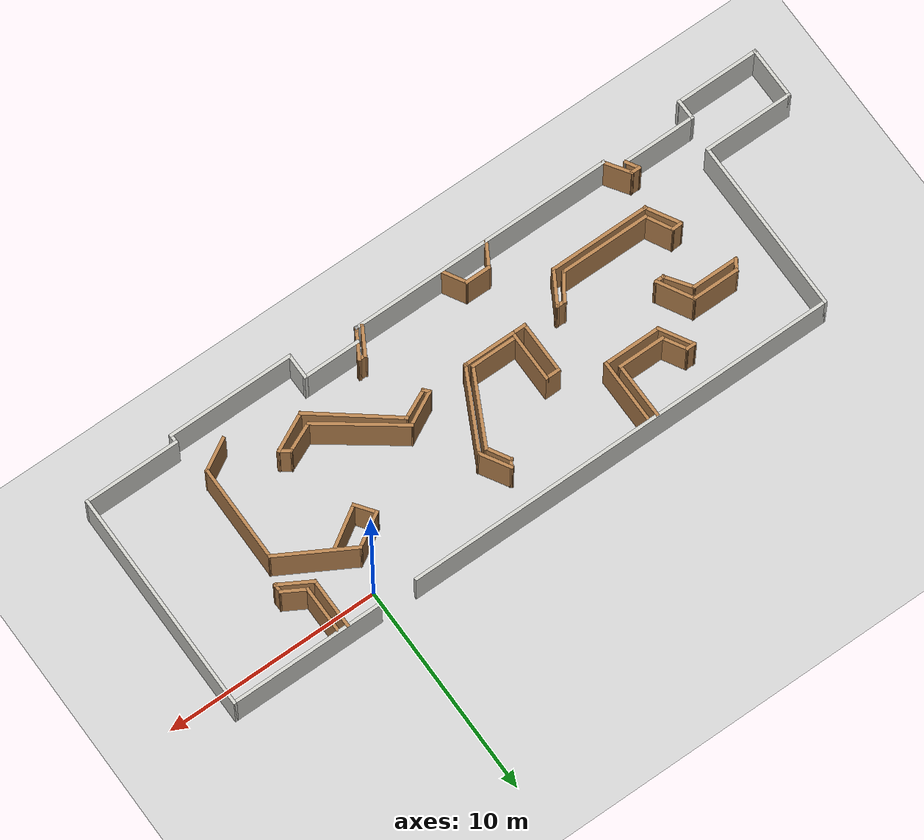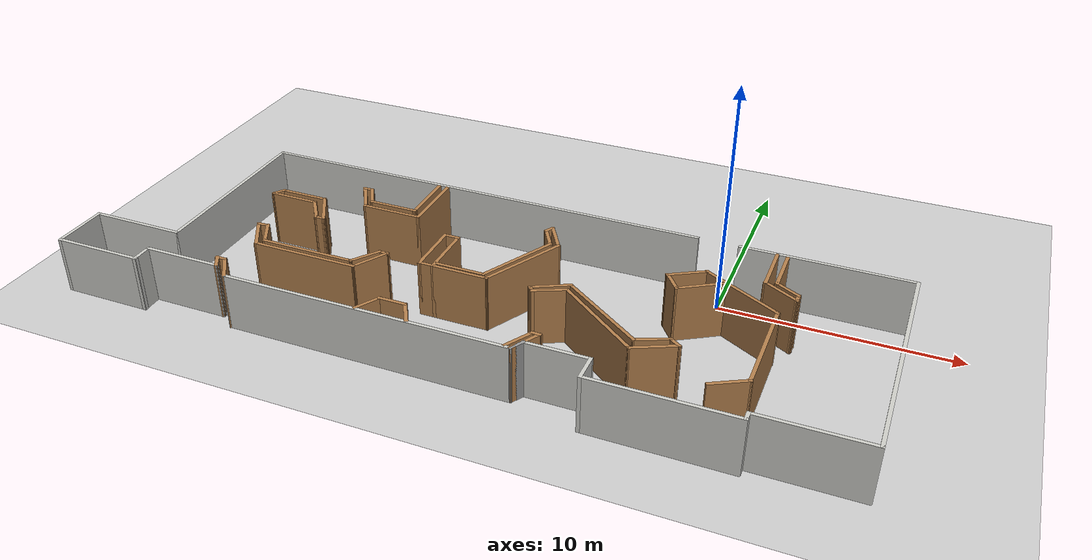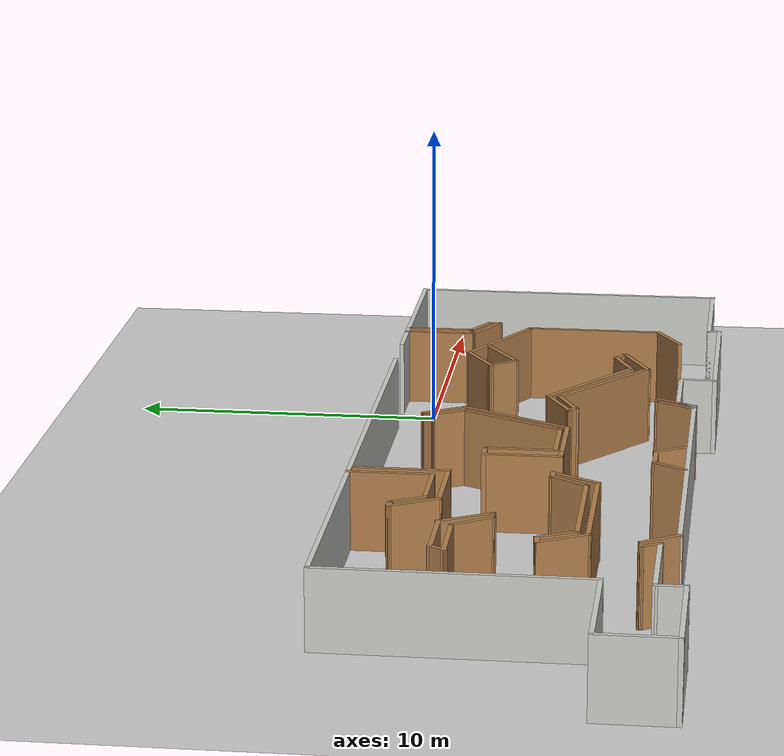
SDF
<sdf version="1.7">
 <world name="default">
  <light name="sun" type="directional">
   <pose>0 0 10 0 -0 0</pose>
   <diffuse>0.8 0.8 0.8 1</diffuse>
   <specular>0.2 0.2 0.2 1</specular>
   <attenuation>
    <range>1000</range>
    <constant>0.9</constant>
    <linear>0.01</linear>
    <quadratic>0.001</quadratic>
   </attenuation>
   <direction>-0.5 0.1 -0.9</direction>
   <spot><inner_angle>0</inner_angle><outer_angle>0</outer_angle><falloff>0</falloff></spot>
  </light>
  <model name="ground_plane">
   <static>1</static>
   <link name="link">
    <collision name="collision">
     <geometry><plane><normal>0 0 1</normal><size>100 100</size></plane></geometry>
     <surface>
      <contact><collide_bitmask>65535</collide_bitmask></contact>
      <friction><ode><mu>100</mu><mu2>50</mu2></ode></friction>
     </surface>
    </collision>
    <visual name="visual">
     <cast_shadows>0</cast_shadows>
     <geometry><plane><normal>0 0 1</normal><size>100 100</size></plane></geometry>
     <material>
      <script><uri>file://media/materials/scripts/gazebo.material</uri><name>Gazebo/Grey</name></script>
     </material>
    </visual>
   </link>
  </model>
  <gravity>0 0 -9.8</gravity>
  <magnetic_field>6e-06 2.3e-05 -4.2e-05</magnetic_field>
  <atmosphere type="adiabatic"/>
  <physics type="ode">
   <max_step_size>0.001</max_step_size>
   <real_time_factor>1</real_time_factor>
   <real_time_update_rate>1000</real_time_update_rate>
  </physics>
  <scene><ambient>0.4 0.4 0.4 1</ambient><background>0.7 0.7 0.7 1</background><shadows>1</shadows></scene>
  <spherical_coordinates>
   <surface_model>EARTH_WGS84</surface_model>
   <latitude_deg>0</latitude_deg>
   <longitude_deg>0</longitude_deg>
   <elevation>0</elevation>
   <heading_deg>0</heading_deg>
  </spherical_coordinates>
  <model name="Galata_museo">
   <pose>-9.11237 -4.2189 0 0 -0 0</pose>
   <link name="Wall_0">
    <collision name="Wall_0_Collision">
     <geometry><box><size>4 0.15 2.5</size></box></geometry>
     <pose>0 0 1.25 0 -0 0</pose>
    </collision>
    <visual name="Wall_0_Visual">
     <pose>0 0 1.25 0 -0 0</pose>
     <geometry><box><size>4 0.15 2.5</size></box></geometry>
     <material>
      <script><uri>file://media/materials/scripts/gazebo.material</uri><name>Gazebo/CeilingTiled</name></script>
      <ambient>1 1 1 1</ambient>
     </material>
     <meta><layer>0</layer></meta>
    </visual>
    <pose>-14.762 -5.10388 0 0 -0 3.14159</pose>
   </link>
   <link name="Wall_1">
    <collision name="Wall_1_Collision">
     <geometry><box><size>2.5 0.15 2.5</size></box></geometry>
     <pose>0 0 1.25 0 -0 0</pose>
    </collision>
    <visual name="Wall_1_Visual">
     <pose>0 0 1.25 0 -0 0</pose>
     <geometry><box><size>2.5 0.15 2.5</size></box></geometry>
     <material>
      <script><uri>file://media/materials/scripts/gazebo.material</uri><name>Gazebo/CeilingTiled</name></script>
      <ambient>1 1 1 1</ambient>
     </material>
     <meta><layer>0</layer></meta>
    </visual>
    <pose>-16.687 -3.92888 0 0 -0 1.5708</pose>
   </link>
   <link name="Wall_10">
    <collision name="Wall_10_Collision">
     <geometry><box><size>0.5 0.15 2.5</size></box></geometry>
     <pose>0 0 1.25 0 -0 0</pose>
    </collision>
    <visual name="Wall_10_Visual">
     <pose>0 0 1.25 0 -0 0</pose>
     <geometry><box><size>0.5 0.15 2.5</size></box></geometry>
     <material>
      <script><uri>file://media/materials/scripts/gazebo.material</uri><name>Gazebo/CeilingTiled</name></script>
      <ambient>1 1 1 1</ambient>
     </material>
     <meta><layer>0</layer></meta>
    </visual>
    <pose>12.337 -5.175 0 0 -0 -1.5708</pose>
   </link>
   <link name="Wall_11">
    <collision name="Wall_11_Collision">
     <geometry><box><size>6 0.15 2.5</size></box></geometry>
     <pose>0 0 1.25 0 -0 0</pose>
    </collision>
    <visual name="Wall_11_Visual">
     <pose>0 0 1.25 0 -0 0</pose>
     <geometry><box><size>6 0.15 2.5</size></box></geometry>
     <material>
      <script><uri>file://media/materials/scripts/gazebo.material</uri><name>Gazebo/CeilingTiled</name></script>
      <ambient>1 1 1 1</ambient>
     </material>
     <meta><layer>0</layer></meta>
    </visual>
    <pose>9.41198 -5.35 0 0 -0 3.14159</pose>
   </link>
   <link name="Wall_12">
    <collision name="Wall_12_Collision">
     <geometry><box><size>1.25 0.15 2.5</size></box></geometry>
     <pose>0 0 1.25 0 -0 0</pose>
    </collision>
    <visual name="Wall_12_Visual">
     <pose>0 0 1.25 0 -0 0</pose>
     <geometry><box><size>1.25 0.15 2.5</size></box></geometry>
     <material>
      <script><uri>file://media/materials/scripts/gazebo.material</uri><name>Gazebo/CeilingTiled</name></script>
      <ambient>1 1 1 1</ambient>
     </material>
     <meta><layer>0</layer></meta>
    </visual>
    <pose>6.48698 -4.8 0 0 -0 1.5708</pose>
   </link>
   <link name="Wall_13">
    <collision name="Wall_13_Collision">
     <geometry><box><size>2.75 0.15 2.5</size></box></geometry>
     <pose>0 0 1.25 0 -0 0</pose>
    </collision>
    <visual name="Wall_13_Visual">
     <pose>0 0 1.25 0 -0 0</pose>
     <geometry><box><size>2.75 0.15 2.5</size></box></geometry>
     <material>
      <script><uri>file://media/materials/scripts/gazebo.material</uri><name>Gazebo/CeilingTiled</name></script>
      <ambient>1 1 1 1</ambient>
     </material>
     <meta><layer>0</layer></meta>
    </visual>
    <pose>5.18698 -4.25 0 0 -0 3.14159</pose>
   </link>
   <link name="Wall_14">
    <collision name="Wall_14_Collision">
     <geometry><box><size>0.75 0.15 2.5</size></box></geometry>
     <pose>0 0 1.25 0 -0 0</pose>
    </collision>
    <visual name="Wall_14_Visual">
     <pose>0 0 1.25 0 -0 0</pose>
     <geometry><box><size>0.75 0.15 2.5</size></box></geometry>
     <material>
      <script><uri>file://media/materials/scripts/gazebo.material</uri><name>Gazebo/Grey</name></script>
      <ambient>1 1 1 1</ambient>
     </material>
     <meta><layer>0</layer></meta>
    </visual>
    <pose>3.73698 -4.50981 0 0 -0 -2.0944</pose>
   </link>
   <link name="Wall_15">
    <collision name="Wall_15_Collision">
     <geometry><box><size>12.5 0.15 2.5</size></box></geometry>
     <pose>0 0 1.25 0 -0 0</pose>
    </collision>
    <visual name="Wall_15_Visual">
     <pose>0 0 1.25 0 -0 0</pose>
     <geometry><box><size>12.5 0.15 2.5</size></box></geometry>
     <material>
      <script><uri>file://media/materials/scripts/gazebo.material</uri><name>Gazebo/CeilingTiled</name></script>
      <ambient>1 1 1 1</ambient>
     </material>
     <meta><layer>0</layer></meta>
    </visual>
    <pose>-2.58802 -4.76961 0 0 -0 3.14159</pose>
   </link>
   <link name="Wall_16">
    <collision name="Wall_16_Collision">
     <geometry><box><size>1.41733 0.15 2.5</size></box></geometry>
     <pose>0 0 1.25 0 -0 0</pose>
    </collision>
    <visual name="Wall_16_Visual">
     <pose>0 0 1.25 0 -0 0</pose>
     <geometry><box><size>1.41733 0.15 2.5</size></box></geometry>
     <material>
      <script><uri>file://media/materials/scripts/gazebo.material</uri><name>Gazebo/Wood</name></script>
      <ambient>1 1 1 1</ambient>
     </material>
     <meta><layer>0</layer></meta>
    </visual>
    <pose>-9.11692 -4.24399 0 0 -0 2.16337</pose>
   </link>
   <link name="Wall_17">
    <collision name="Wall_17_Collision">
     <geometry><box><size>0.5 0.15 2.5</size></box></geometry>
     <pose>0 0 1.25 0 -0 0</pose>
    </collision>
    <visual name="Wall_17_Visual">
     <pose>0 0 1.25 0 -0 0</pose>
     <geometry><box><size>0.5 0.15 2.5</size></box></geometry>
     <material>
      <script><uri>file://media/materials/scripts/gazebo.material</uri><name>Gazebo/Wood</name></script>
      <ambient>1 1 1 1</ambient>
     </material>
     <meta><layer>0</layer></meta>
    </visual>
    <pose>-9.64582 -3.72822 0 0 -0 3.14159</pose>
   </link>
   <link name="Wall_2">
    <collision name="Wall_2_Collision">
     <geometry><box><size>4.25 0.15 2.5</size></box></geometry>
     <pose>0 0 1.25 0 -0 0</pose>
    </collision>
    <visual name="Wall_2_Visual">
     <pose>0 0 1.25 0 -0 0</pose>
     <geometry><box><size>4.25 0.15 2.5</size></box></geometry>
     <material>
      <script><uri>file://media/materials/scripts/gazebo.material</uri><name>Gazebo/CeilingTiled</name></script>
      <ambient>1 1 1 1</ambient>
     </material>
     <meta><layer>0</layer></meta>
    </visual>
    <pose>-14.637 -2.75388 0 0 -0 0</pose>
   </link>
   <link name="Wall_20">
    <collision name="Wall_20_Collision">
     <geometry><box><size>0.75 0.15 2.5</size></box></geometry>
     <pose>0 0 1.25 0 -0 0</pose>
    </collision>
    <visual name="Wall_20_Visual">
     <pose>0 0 1.25 0 -0 0</pose>
     <geometry><box><size>0.75 0.15 2.5</size></box></geometry>
     <material>
      <script><uri>file://media/materials/scripts/gazebo.material</uri><name>Gazebo/Wood</name></script>
      <ambient>1 1 1 1</ambient>
     </material>
     <meta><layer>0</layer></meta>
    </visual>
    <pose>-9.67082 -3.98803 0 0 -0 -1.0472</pose>
   </link>
   <link name="Wall_21">
    <collision name="Wall_21_Collision">
     <geometry><box><size>3.5 0.15 2.5</size></box></geometry>
     <pose>0 0 1.25 0 -0 0</pose>
    </collision>
    <visual name="Wall_21_Visual">
     <pose>0 0 1.25 0 -0 0</pose>
     <geometry><box><size>3.5 0.15 2.5</size></box></geometry>
     <material>
      <script><uri>file://media/materials/scripts/gazebo.material</uri><name>Gazebo/CeilingTiled</name></script>
      <ambient>1 1 1 1</ambient>
     </material>
     <meta><layer>0</layer></meta>
    </visual>
    <pose>-11.1958 -4.24784 0 0 -0 3.14159</pose>
   </link>
   <link name="Wall_22">
    <collision name="Wall_22_Collision">
     <geometry><box><size>1.01715 0.15 2.5</size></box></geometry>
     <pose>0 0 1.25 0 -0 0</pose>
    </collision>
    <visual name="Wall_22_Visual">
     <pose>0 0 1.25 0 -0 0</pose>
     <geometry><box><size>1.01715 0.15 2.5</size></box></geometry>
     <material>
      <script><uri>file://media/materials/scripts/gazebo.material</uri><name>Gazebo/CeilingTiled</name></script>
      <ambient>1 1 1 1</ambient>
     </material>
     <meta><layer>0</layer></meta>
    </visual>
    <pose>-12.8662 -4.68127 0 0 -0 -1.56017</pose>
   </link>
   <link name="Wall_24">
    <collision name="Wall_24_Collision">
     <geometry><box><size>1.75 0.15 2.5</size></box></geometry>
     <pose>0 0 1.25 0 -0 0</pose>
    </collision>
    <visual name="Wall_24_Visual">
     <pose>0 0 1.25 0 -0 0</pose>
     <geometry><box><size>1.75 0.15 2.5</size></box></geometry>
     <material>
      <script><uri>file://media/materials/scripts/gazebo.material</uri><name>Gazebo/Wood</name></script>
      <ambient>1 1 1 1</ambient>
     </material>
     <meta><layer>0</layer></meta>
    </visual>
    <pose>-9.40745 -1.48576 0 0 -0 -1.0472</pose>
   </link>
   <link name="Wall_25">
    <collision name="Wall_25_Collision">
     <geometry><box><size>4.75 0.15 2.5</size></box></geometry>
     <pose>0 0 1.25 0 -0 0</pose>
    </collision>
    <visual name="Wall_25_Visual">
     <pose>0 0 1.25 0 -0 0</pose>
     <geometry><box><size>4.75 0.15 2.5</size></box></geometry>
     <material>
      <script><uri>file://media/materials/scripts/gazebo.material</uri><name>Gazebo/Wood</name></script>
      <ambient>1 1 1 1</ambient>
     </material>
     <meta><layer>0</layer></meta>
    </visual>
    <pose>-6.70745 -2.17858 0 0 -0 0</pose>
   </link>
   <link name="Wall_26">
    <collision name="Wall_26_Collision">
     <geometry><box><size>1.75 0.15 2.5</size></box></geometry>
     <pose>0 0 1.25 0 -0 0</pose>
    </collision>
    <visual name="Wall_26_Visual">
     <pose>0 0 1.25 0 -0 0</pose>
     <geometry><box><size>1.75 0.15 2.5</size></box></geometry>
     <material>
      <script><uri>file://media/materials/scripts/gazebo.material</uri><name>Gazebo/Wood</name></script>
      <ambient>1 1 1 1</ambient>
     </material>
     <meta><layer>0</layer></meta>
    </visual>
    <pose>-4.00745 -1.48576 0 0 -0 1.0472</pose>
   </link>
   <link name="Wall_27">
    <collision name="Wall_27_Collision">
     <geometry><box><size>0.5 0.15 2.5</size></box></geometry>
     <pose>0 0 1.25 0 -0 0</pose>
    </collision>
    <visual name="Wall_27_Visual">
     <pose>0 0 1.25 0 -0 0</pose>
     <geometry><box><size>0.5 0.15 2.5</size></box></geometry>
     <material>
      <script><uri>file://media/materials/scripts/gazebo.material</uri><name>Gazebo/Wood</name></script>
      <ambient>1 1 1 1</ambient>
     </material>
     <meta><layer>0</layer></meta>
    </visual>
    <pose>-3.78245 -0.792938 0 0 -0 3.14159</pose>
   </link>
   <link name="Wall_28">
    <collision name="Wall_28_Collision">
     <geometry><box><size>1.44475 0.15 2.5</size></box></geometry>
     <pose>0 0 1.25 0 -0 0</pose>
    </collision>
    <visual name="Wall_28_Visual">
     <pose>0 0 1.25 0 -0 0</pose>
     <geometry><box><size>1.44475 0.15 2.5</size></box></geometry>
     <material>
      <script><uri>file://media/materials/scripts/gazebo.material</uri><name>Gazebo/Wood</name></script>
      <ambient>1 1 1 1</ambient>
     </material>
     <meta><layer>0</layer></meta>
    </visual>
    <pose>-4.32672 -1.32467 0 0 -0 -2.17779</pose>
   </link>
   <link name="Wall_29">
    <collision name="Wall_29_Collision">
     <geometry><box><size>4.25 0.15 2.5</size></box></geometry>
     <pose>0 0 1.25 0 -0 0</pose>
    </collision>
    <visual name="Wall_29_Visual">
     <pose>0 0 1.25 0 -0 0</pose>
     <geometry><box><size>4.25 0.15 2.5</size></box></geometry>
     <material>
      <script><uri>file://media/materials/scripts/gazebo.material</uri><name>Gazebo/Wood</name></script>
      <ambient>1 1 1 1</ambient>
     </material>
     <meta><layer>0</layer></meta>
    </visual>
    <pose>-6.74598 -1.8564 0 0 -0 3.14159</pose>
   </link>
   <link name="Wall_3">
    <collision name="Wall_3_Collision">
     <geometry><box><size>8.25 0.15 2.5</size></box></geometry>
     <pose>0 0 1.25 0 -0 0</pose>
    </collision>
    <visual name="Wall_3_Visual">
     <pose>0 0 1.25 0 -0 0</pose>
     <geometry><box><size>8.25 0.15 2.5</size></box></geometry>
     <material>
      <script><uri>file://media/materials/scripts/gazebo.material</uri><name>Gazebo/CeilingTiled</name></script>
      <ambient>1 1 1 1</ambient>
     </material>
     <meta><layer>0</layer></meta>
    </visual>
    <pose>-12.587 1.29612 0 0 -0 1.5708</pose>
   </link>
   <link name="Wall_30">
    <collision name="Wall_30_Collision">
     <geometry><box><size>1.39193 0.15 2.5</size></box></geometry>
     <pose>0 0 1.25 0 -0 0</pose>
    </collision>
    <visual name="Wall_30_Visual">
     <pose>0 0 1.25 0 -0 0</pose>
     <geometry><box><size>1.39193 0.15 2.5</size></box></geometry>
     <material>
      <script><uri>file://media/materials/scripts/gazebo.material</uri><name>Gazebo/Wood</name></script>
      <ambient>1 1 1 1</ambient>
     </material>
     <meta><layer>0</layer></meta>
    </visual>
    <pose>-9.08898 -1.30891 0 0 -0 2.06219</pose>
   </link>
   <link name="Wall_31">
    <collision name="Wall_31_Collision">
     <geometry><box><size>0.538442 0.15 2.5</size></box></geometry>
     <pose>0 0 1.25 0 -0 0</pose>
    </collision>
    <visual name="Wall_31_Visual">
     <pose>0 0 1.25 0 -0 0</pose>
     <geometry><box><size>0.538442 0.15 2.5</size></box></geometry>
     <material>
      <script><uri>file://media/materials/scripts/gazebo.material</uri><name>Gazebo/Wood</name></script>
      <ambient>1 1 1 1</ambient>
     </material>
     <meta><layer>0</layer></meta>
    </visual>
    <pose>-9.58337 -0.771375 0 0 -0 -3.09031</pose>
   </link>
   <link name="Wall_33">
    <collision name="Wall_33_Collision">
     <geometry><box><size>2.25 0.15 2.5</size></box></geometry>
     <pose>0 0 1.25 0 -0 0</pose>
    </collision>
    <visual name="Wall_33_Visual">
     <pose>0 0 1.25 0 -0 0</pose>
     <geometry><box><size>2.25 0.15 2.5</size></box></geometry>
     <material>
      <script><uri>file://media/materials/scripts/gazebo.material</uri><name>Gazebo/Wood</name></script>
      <ambient>1 1 1 1</ambient>
     </material>
     <meta><layer>0</layer></meta>
    </visual>
    <pose>-9.67052 1.75859 0 0 -0 0</pose>
   </link>
   <link name="Wall_34">
    <collision name="Wall_34_Collision">
     <geometry><box><size>1.48024 0.15 2.5</size></box></geometry>
     <pose>0 0 1.25 0 -0 0</pose>
    </collision>
    <visual name="Wall_34_Visual">
     <pose>0 0 1.25 0 -0 0</pose>
     <geometry><box><size>1.48024 0.15 2.5</size></box></geometry>
     <material>
      <script><uri>file://media/materials/scripts/gazebo.material</uri><name>Gazebo/Wood</name></script>
      <ambient>1 1 1 1</ambient>
     </material>
     <meta><layer>0</layer></meta>
    </visual>
    <pose>-8.23932 1.21355 0 0 -0 -0.960477</pose>
   </link>
   <link name="Wall_35">
    <collision name="Wall_35_Collision">
     <geometry><box><size>0.5 0.15 2.5</size></box></geometry>
     <pose>0 0 1.25 0 -0 0</pose>
    </collision>
    <visual name="Wall_35_Visual">
     <pose>0 0 1.25 0 -0 0</pose>
     <geometry><box><size>0.5 0.15 2.5</size></box></geometry>
     <material>
      <script><uri>file://media/materials/scripts/gazebo.material</uri><name>Gazebo/Wood</name></script>
      <ambient>1 1 1 1</ambient>
     </material>
     <meta><layer>0</layer></meta>
    </visual>
    <pose>-7.68312 0.668506 0 0 -0 0</pose>
   </link>
   <link name="Wall_36">
    <collision name="Wall_36_Collision">
     <geometry><box><size>1.86711 0.15 2.5</size></box></geometry>
     <pose>0 0 1.25 0 -0 0</pose>
    </collision>
    <visual name="Wall_36_Visual">
     <pose>0 0 1.25 0 -0 0</pose>
     <geometry><box><size>1.86711 0.15 2.5</size></box></geometry>
     <material>
      <script><uri>file://media/materials/scripts/gazebo.material</uri><name>Gazebo/Wood</name></script>
      <ambient>1 1 1 1</ambient>
     </material>
     <meta><layer>0</layer></meta>
    </visual>
    <pose>-7.92783 1.41748 0 0 -0 2.08158</pose>
   </link>
   <link name="Wall_37">
    <collision name="Wall_37_Collision">
     <geometry><box><size>2.25 0.15 2.5</size></box></geometry>
     <pose>0 0 1.25 0 -0 0</pose>
    </collision>
    <visual name="Wall_37_Visual">
     <pose>0 0 1.25 0 -0 0</pose>
     <geometry><box><size>2.25 0.15 2.5</size></box></geometry>
     <material>
      <script><uri>file://media/materials/scripts/gazebo.material</uri><name>Gazebo/Wood</name></script>
      <ambient>1 1 1 1</ambient>
     </material>
     <meta><layer>0</layer></meta>
    </visual>
    <pose>-9.39755 2.16644 0 0 -0 3.14159</pose>
   </link>
   <link name="Wall_38">
    <collision name="Wall_38_Collision">
     <geometry><box><size>0.640775 0.15 2.5</size></box></geometry>
     <pose>0 0 1.25 0 -0 0</pose>
    </collision>
    <visual name="Wall_38_Visual">
     <pose>0 0 1.25 0 -0 0</pose>
     <geometry><box><size>0.640775 0.15 2.5</size></box></geometry>
     <material>
      <script><uri>file://media/materials/scripts/gazebo.material</uri><name>Gazebo/Wood</name></script>
      <ambient>1 1 1 1</ambient>
     </material>
     <meta><layer>0</layer></meta>
    </visual>
    <pose>-10.584 1.96252 0 0 -0 -2.16061</pose>
   </link>
   <link name="Wall_4">
    <collision name="Wall_4_Collision">
     <geometry><box><size>20.5 0.15 2.5</size></box></geometry>
     <pose>0 0 1.25 0 -0 0</pose>
    </collision>
    <visual name="Wall_4_Visual">
     <pose>0 0 1.25 0 -0 0</pose>
     <geometry><box><size>20.5 0.15 2.5</size></box></geometry>
     <material>
      <script><uri>file://media/materials/scripts/gazebo.material</uri><name>Gazebo/CeilingTiled</name></script>
      <ambient>1 1 1 1</ambient>
     </material>
     <meta><layer>0</layer></meta>
    </visual>
    <pose>-2.41198 5.34612 0 0 -0 0</pose>
   </link>
   <link name="Wall_40">
    <collision name="Wall_40_Collision">
     <geometry><box><size>1.75 0.15 2.5</size></box></geometry>
     <pose>0 0 1.25 0 -0 0</pose>
    </collision>
    <visual name="Wall_40_Visual">
     <pose>0 0 1.25 0 -0 0</pose>
     <geometry><box><size>1.75 0.15 2.5</size></box></geometry>
     <material>
      <script><uri>file://media/materials/scripts/gazebo.material</uri><name>Gazebo/Wood</name></script>
      <ambient>1 1 1 1</ambient>
     </material>
     <meta><layer>0</layer></meta>
    </visual>
    <pose>-6.78331 3.04572 0 0 -0 -1.0472</pose>
   </link>
   <link name="Wall_41">
    <collision name="Wall_41_Collision">
     <geometry><box><size>2.75 0.15 2.5</size></box></geometry>
     <pose>0 0 1.25 0 -0 0</pose>
    </collision>
    <visual name="Wall_41_Visual">
     <pose>0 0 1.25 0 -0 0</pose>
     <geometry><box><size>2.75 0.15 2.5</size></box></geometry>
     <material>
      <script><uri>file://media/materials/scripts/gazebo.material</uri><name>Gazebo/Wood</name></script>
      <ambient>1 1 1 1</ambient>
     </material>
     <meta><layer>0</layer></meta>
    </visual>
    <pose>-5.08331 2.3529 0 0 -0 0</pose>
   </link>
   <link name="Wall_42">
    <collision name="Wall_42_Collision">
     <geometry><box><size>3 0.15 2.5</size></box></geometry>
     <pose>0 0 1.25 0 -0 0</pose>
    </collision>
    <visual name="Wall_42_Visual">
     <pose>0 0 1.25 0 -0 0</pose>
     <geometry><box><size>3 0.15 2.5</size></box></geometry>
     <material>
      <script><uri>file://media/materials/scripts/gazebo.material</uri><name>Gazebo/Wood</name></script>
      <ambient>1 1 1 1</ambient>
     </material>
     <meta><layer>0</layer></meta>
    </visual>
    <pose>-3.78331 3.7779 0 0 -0 1.5708</pose>
   </link>
   <link name="Wall_44">
    <collision name="Wall_44_Collision">
     <geometry><box><size>0.5 0.15 2.5</size></box></geometry>
     <pose>0 0 1.25 0 -0 0</pose>
    </collision>
    <visual name="Wall_44_Visual">
     <pose>0 0 1.25 0 -0 0</pose>
     <geometry><box><size>0.5 0.15 2.5</size></box></geometry>
     <material>
      <script><uri>file://media/materials/scripts/gazebo.material</uri><name>Gazebo/Wood</name></script>
      <ambient>1 1 1 1</ambient>
     </material>
     <meta><layer>0</layer></meta>
    </visual>
    <pose>-7.00831 3.73854 0 0 -0 0</pose>
   </link>
   <link name="Wall_45">
    <collision name="Wall_45_Collision">
     <geometry><box><size>1.25 0.15 2.5</size></box></geometry>
     <pose>0 0 1.25 0 -0 0</pose>
    </collision>
    <visual name="Wall_45_Visual">
     <pose>0 0 1.25 0 -0 0</pose>
     <geometry><box><size>1.25 0.15 2.5</size></box></geometry>
     <material>
      <script><uri>file://media/materials/scripts/gazebo.material</uri><name>Gazebo/Wood</name></script>
      <ambient>1 1 1 1</ambient>
     </material>
     <meta><layer>0</layer></meta>
    </visual>
    <pose>-6.55831 3.26223 0 0 -0 -1.0472</pose>
   </link>
   <link name="Wall_46">
    <collision name="Wall_46_Collision">
     <geometry><box><size>2.25 0.15 2.5</size></box></geometry>
     <pose>0 0 1.25 0 -0 0</pose>
    </collision>
    <visual name="Wall_46_Visual">
     <pose>0 0 1.25 0 -0 0</pose>
     <geometry><box><size>2.25 0.15 2.5</size></box></geometry>
     <material>
      <script><uri>file://media/materials/scripts/gazebo.material</uri><name>Gazebo/Wood</name></script>
      <ambient>1 1 1 1</ambient>
     </material>
     <meta><layer>0</layer></meta>
    </visual>
    <pose>-5.23331 2.78591 0 0 -0 0</pose>
   </link>
   <link name="Wall_47">
    <collision name="Wall_47_Collision">
     <geometry><box><size>2.6822 0.15 2.5</size></box></geometry>
     <pose>0 0 1.25 0 -0 0</pose>
    </collision>
    <visual name="Wall_47_Visual">
     <pose>0 0 1.25 0 -0 0</pose>
     <geometry><box><size>2.6822 0.15 2.5</size></box></geometry>
     <material>
      <script><uri>file://media/materials/scripts/gazebo.material</uri><name>Gazebo/Wood</name></script>
      <ambient>1 1 1 1</ambient>
     </material>
     <meta><layer>0</layer></meta>
    </visual>
    <pose>-4.18908 4.05198 0 0 -0 1.57535</pose>
   </link>
   <link name="Wall_49">
    <collision name="Wall_49_Collision">
     <geometry><box><size>1.25 0.15 2.5</size></box></geometry>
     <pose>0 0 1.25 0 -0 0</pose>
    </collision>
    <visual name="Wall_49_Visual">
     <pose>0 0 1.25 0 -0 0</pose>
     <geometry><box><size>1.25 0.15 2.5</size></box></geometry>
     <material>
      <script><uri>file://media/materials/scripts/gazebo.material</uri><name>Gazebo/Wood</name></script>
      <ambient>1 1 1 1</ambient>
     </material>
     <meta><layer>0</layer></meta>
    </visual>
    <pose>-2.58358 -4.24483 0 0 -0 1.0472</pose>
   </link>
   <link name="Wall_50">
    <collision name="Wall_50_Collision">
     <geometry><box><size>1.25 0.15 2.5</size></box></geometry>
     <pose>0 0 1.25 0 -0 0</pose>
    </collision>
    <visual name="Wall_50_Visual">
     <pose>0 0 1.25 0 -0 0</pose>
     <geometry><box><size>1.25 0.15 2.5</size></box></geometry>
     <material>
      <script><uri>file://media/materials/scripts/gazebo.material</uri><name>Gazebo/Wood</name></script>
      <ambient>1 1 1 1</ambient>
     </material>
     <meta><layer>0</layer></meta>
    </visual>
    <pose>-1.75858 -3.76851 0 0 -0 0</pose>
   </link>
   <link name="Wall_51">
    <collision name="Wall_51_Collision">
     <geometry><box><size>1.25 0.15 2.5</size></box></geometry>
     <pose>0 0 1.25 0 -0 0</pose>
    </collision>
    <visual name="Wall_51_Visual">
     <pose>0 0 1.25 0 -0 0</pose>
     <geometry><box><size>1.25 0.15 2.5</size></box></geometry>
     <material>
      <script><uri>file://media/materials/scripts/gazebo.material</uri><name>Gazebo/Wood</name></script>
      <ambient>1 1 1 1</ambient>
     </material>
     <meta><layer>0</layer></meta>
    </visual>
    <pose>-0.93358 -4.24483 0 0 -0 -1.0472</pose>
   </link>
   <link name="Wall_53">
    <collision name="Wall_53_Collision">
     <geometry><box><size>1.5 0.15 2.5</size></box></geometry>
     <pose>0 0 1.25 0 -0 0</pose>
    </collision>
    <visual name="Wall_53_Visual">
     <pose>0 0 1.25 0 -0 0</pose>
     <geometry><box><size>1.5 0.15 2.5</size></box></geometry>
     <material>
      <script><uri>file://media/materials/scripts/gazebo.material</uri><name>Gazebo/Wood</name></script>
      <ambient>1 1 1 1</ambient>
     </material>
     <meta><layer>0</layer></meta>
    </visual>
    <pose>3.92448 -4.18505 0 0 -0 1.0472</pose>
   </link>
   <link name="Wall_54">
    <collision name="Wall_54_Collision">
     <geometry><box><size>0.436117 0.15 2.5</size></box></geometry>
     <pose>0 0 1.25 0 -0 0</pose>
    </collision>
    <visual name="Wall_54_Visual">
     <pose>0 0 1.25 0 -0 0</pose>
     <geometry><box><size>0.436117 0.15 2.5</size></box></geometry>
     <material>
      <script><uri>file://media/materials/scripts/gazebo.material</uri><name>Gazebo/Wood</name></script>
      <ambient>1 1 1 1</ambient>
     </material>
     <meta><layer>0</layer></meta>
    </visual>
    <pose>4.11897 -3.59691 0 0 -0 3.1166</pose>
   </link>
   <link name="Wall_55">
    <collision name="Wall_55_Collision">
     <geometry><box><size>1.42298 0.15 2.5</size></box></geometry>
     <pose>0 0 1.25 0 -0 0</pose>
    </collision>
    <visual name="Wall_55_Visual">
     <pose>0 0 1.25 0 -0 0</pose>
     <geometry><box><size>1.42298 0.15 2.5</size></box></geometry>
     <material>
      <script><uri>file://media/materials/scripts/gazebo.material</uri><name>Gazebo/Wood</name></script>
      <ambient>1 1 1 1</ambient>
     </material>
     <meta><layer>0</layer></meta>
    </visual>
    <pose>3.66017 -4.14596 0 0 -0 -2.08994</pose>
   </link>
   <link name="Wall_57">
    <collision name="Wall_57_Collision">
     <geometry><box><size>0.75 0.15 2.5</size></box></geometry>
     <pose>0 0 1.25 0 -0 0</pose>
    </collision>
    <visual name="Wall_57_Visual">
     <pose>0 0 1.25 0 -0 0</pose>
     <geometry><box><size>0.75 0.15 2.5</size></box></geometry>
     <material>
      <script><uri>file://media/materials/scripts/gazebo.material</uri><name>Gazebo/Wood</name></script>
      <ambient>1 1 1 1</ambient>
     </material>
     <meta><layer>0</layer></meta>
    </visual>
    <pose>-1.75361 1.44884 0 0 -0 0</pose>
   </link>
   <link name="Wall_58">
    <collision name="Wall_58_Collision">
     <geometry><box><size>2.5 0.15 2.5</size></box></geometry>
     <pose>0 0 1.25 0 -0 0</pose>
    </collision>
    <visual name="Wall_58_Visual">
     <pose>0 0 1.25 0 -0 0</pose>
     <geometry><box><size>2.5 0.15 2.5</size></box></geometry>
     <material>
      <script><uri>file://media/materials/scripts/gazebo.material</uri><name>Gazebo/Wood</name></script>
      <ambient>1 1 1 1</ambient>
     </material>
     <meta><layer>0</layer></meta>
    </visual>
    <pose>-1.45361 0.273835 0 0 -0 -1.5708</pose>
   </link>
   <link name="Wall_59">
    <collision name="Wall_59_Collision">
     <geometry><box><size>2.5 0.15 2.5</size></box></geometry>
     <pose>0 0 1.25 0 -0 0</pose>
    </collision>
    <visual name="Wall_59_Visual">
     <pose>0 0 1.25 0 -0 0</pose>
     <geometry><box><size>2.5 0.15 2.5</size></box></geometry>
     <material>
      <script><uri>file://media/materials/scripts/gazebo.material</uri><name>Gazebo/Wood</name></script>
      <ambient>1 1 1 1</ambient>
     </material>
     <meta><layer>0</layer></meta>
    </visual>
    <pose>-0.278609 -0.901165 0 0 -0 0</pose>
   </link>
   <link name="Wall_6">
    <collision name="Wall_6_Collision">
     <geometry><box><size>7.25 0.15 2.5</size></box></geometry>
     <pose>0 0 1.25 0 -0 0</pose>
    </collision>
    <visual name="Wall_6_Visual">
     <pose>0 0 1.25 0 -0 0</pose>
     <geometry><box><size>7.25 0.15 2.5</size></box></geometry>
     <material>
      <script><uri>file://media/materials/scripts/gazebo.material</uri><name>Gazebo/CeilingTiled</name></script>
      <ambient>1 1 1 1</ambient>
     </material>
     <meta><layer>0</layer></meta>
    </visual>
    <pose>13.137 5.35 0 0 -0 0</pose>
   </link>
   <link name="Wall_60">
    <collision name="Wall_60_Collision">
     <geometry><box><size>3.9591 0.15 2.5</size></box></geometry>
     <pose>0 0 1.25 0 -0 0</pose>
    </collision>
    <visual name="Wall_60_Visual">
     <pose>0 0 1.25 0 -0 0</pose>
     <geometry><box><size>3.9591 0.15 2.5</size></box></geometry>
     <material>
      <script><uri>file://media/materials/scripts/gazebo.material</uri><name>Gazebo/Wood</name></script>
      <ambient>1 1 1 1</ambient>
     </material>
     <meta><layer>0</layer></meta>
    </visual>
    <pose>1.76724 0.792628 0 0 -0 1.0959</pose>
   </link>
   <link name="Wall_62">
    <collision name="Wall_62_Collision">
     <geometry><box><size>2.5 0.15 2.5</size></box></geometry>
     <pose>0 0 1.25 0 -0 0</pose>
    </collision>
    <visual name="Wall_62_Visual">
     <pose>0 0 1.25 0 -0 0</pose>
     <geometry><box><size>2.5 0.15 2.5</size></box></geometry>
     <material>
      <script><uri>file://media/materials/scripts/gazebo.material</uri><name>Gazebo/Wood</name></script>
      <ambient>1 1 1 1</ambient>
     </material>
     <meta><layer>0</layer></meta>
    </visual>
    <pose>-2.05361 0.273835 0 0 -0 -1.5708</pose>
   </link>
   <link name="Wall_63">
    <collision name="Wall_63_Collision">
     <geometry><box><size>0.75 0.15 2.5</size></box></geometry>
     <pose>0 0 1.25 0 -0 0</pose>
    </collision>
    <visual name="Wall_63_Visual">
     <pose>0 0 1.25 0 -0 0</pose>
     <geometry><box><size>0.75 0.15 2.5</size></box></geometry>
     <material>
      <script><uri>file://media/materials/scripts/gazebo.material</uri><name>Gazebo/Wood</name></script>
      <ambient>1 1 1 1</ambient>
     </material>
     <meta><layer>0</layer></meta>
    </visual>
    <pose>-1.75361 -0.901165 0 0 -0 0</pose>
   </link>
   <link name="Wall_66">
    <collision name="Wall_66_Collision">
     <geometry><box><size>1.591 0.15 2.5</size></box></geometry>
     <pose>0 0 1.25 0 -0 0</pose>
    </collision>
    <visual name="Wall_66_Visual">
     <pose>0 0 1.25 0 -0 0</pose>
     <geometry><box><size>1.591 0.15 2.5</size></box></geometry>
     <material>
      <script><uri>file://media/materials/scripts/gazebo.material</uri><name>Gazebo/Wood</name></script>
      <ambient>1 1 1 1</ambient>
     </material>
     <meta><layer>0</layer></meta>
    </visual>
    <pose>2.27155 3.10672 0 0 -0 2.1045</pose>
   </link>
   <link name="Wall_67">
    <collision name="Wall_67_Collision">
     <geometry><box><size>0.5 0.15 2.5</size></box></geometry>
     <pose>0 0 1.25 0 -0 0</pose>
    </collision>
    <visual name="Wall_67_Visual">
     <pose>0 0 1.25 0 -0 0</pose>
     <geometry><box><size>0.5 0.15 2.5</size></box></geometry>
     <material>
      <script><uri>file://media/materials/scripts/gazebo.material</uri><name>Gazebo/Wood</name></script>
      <ambient>1 1 1 1</ambient>
     </material>
     <meta><layer>0</layer></meta>
    </visual>
    <pose>1.81751 3.57546 0 0 -0 -2.0944</pose>
   </link>
   <link name="Wall_68">
    <collision name="Wall_68_Collision">
     <geometry><box><size>1.25 0.15 2.5</size></box></geometry>
     <pose>0 0 1.25 0 -0 0</pose>
    </collision>
    <visual name="Wall_68_Visual">
     <pose>0 0 1.25 0 -0 0</pose>
     <geometry><box><size>1.25 0.15 2.5</size></box></geometry>
     <material>
      <script><uri>file://media/materials/scripts/gazebo.material</uri><name>Gazebo/Wood</name></script>
      <ambient>1 1 1 1</ambient>
     </material>
     <meta><layer>0</layer></meta>
    </visual>
    <pose>2.00501 2.94759 0 0 -0 -1.0472</pose>
   </link>
   <link name="Wall_69">
    <collision name="Wall_69_Collision">
     <geometry><box><size>3.69864 0.15 2.5</size></box></geometry>
     <pose>0 0 1.25 0 -0 0</pose>
    </collision>
    <visual name="Wall_69_Visual">
     <pose>0 0 1.25 0 -0 0</pose>
     <geometry><box><size>3.69864 0.15 2.5</size></box></geometry>
     <material>
      <script><uri>file://media/materials/scripts/gazebo.material</uri><name>Gazebo/Wood</name></script>
      <ambient>1 1 1 1</ambient>
     </material>
     <meta><layer>0</layer></meta>
    </visual>
    <pose>1.47785 0.888635 0 0 -0 -2.03991</pose>
   </link>
   <link name="Wall_7">
    <collision name="Wall_7_Collision">
     <geometry><box><size>10.5 0.15 2.5</size></box></geometry>
     <pose>0 0 1.25 0 -0 0</pose>
    </collision>
    <visual name="Wall_7_Visual">
     <pose>0 0 1.25 0 -0 0</pose>
     <geometry><box><size>10.5 0.15 2.5</size></box></geometry>
     <material>
      <script><uri>file://media/materials/scripts/gazebo.material</uri><name>Gazebo/CeilingTiled</name></script>
      <ambient>1 1 1 1</ambient>
     </material>
     <meta><layer>0</layer></meta>
    </visual>
    <pose>16.687 0.175 0 0 -0 -1.5708</pose>
   </link>
   <link name="Wall_70">
    <collision name="Wall_70_Collision">
     <geometry><box><size>2.25901 0.15 2.5</size></box></geometry>
     <pose>0 0 1.25 0 -0 0</pose>
    </collision>
    <visual name="Wall_70_Visual">
     <pose>0 0 1.25 0 -0 0</pose>
     <geometry><box><size>2.25901 0.15 2.5</size></box></geometry>
     <material>
      <script><uri>file://media/materials/scripts/gazebo.material</uri><name>Gazebo/Wood</name></script>
      <ambient>1 1 1 1</ambient>
     </material>
     <meta><layer>0</layer></meta>
    </visual>
    <pose>-0.378809 -0.694006 0 0 -0 3.14159</pose>
   </link>
   <link name="Wall_72">
    <collision name="Wall_72_Collision">
     <geometry><box><size>0.430142 0.15 2.5</size></box></geometry>
     <pose>0 0 1.25 0 -0 0</pose>
    </collision>
    <visual name="Wall_72_Visual">
     <pose>0 0 1.25 0 -0 0</pose>
     <geometry><box><size>0.430142 0.15 2.5</size></box></geometry>
     <material>
      <script><uri>file://media/materials/scripts/gazebo.material</uri><name>Gazebo/Wood</name></script>
      <ambient>1 1 1 1</ambient>
     </material>
     <meta><layer>0</layer></meta>
    </visual>
    <pose>2.82981 -0.925208 0 0 -0 2.27069</pose>
   </link>
   <link name="Wall_73">
    <collision name="Wall_73_Collision">
     <geometry><box><size>1.75419 0.15 2.5</size></box></geometry>
     <pose>0 0 1.25 0 -0 0</pose>
    </collision>
    <visual name="Wall_73_Visual">
     <pose>0 0 1.25 0 -0 0</pose>
     <geometry><box><size>1.75419 0.15 2.5</size></box></geometry>
     <material>
      <script><uri>file://media/materials/scripts/gazebo.material</uri><name>Gazebo/Wood</name></script>
      <ambient>1 1 1 1</ambient>
     </material>
     <meta><layer>0</layer></meta>
    </visual>
    <pose>3.45011 -0.445888 0 0 -0 0.482513</pose>
   </link>
   <link name="Wall_74">
    <collision name="Wall_74_Collision">
     <geometry><box><size>4.32753 0.15 2.5</size></box></geometry>
     <pose>0 0 1.25 0 -0 0</pose>
    </collision>
    <visual name="Wall_74_Visual">
     <pose>0 0 1.25 0 -0 0</pose>
     <geometry><box><size>4.32753 0.15 2.5</size></box></geometry>
     <material>
      <script><uri>file://media/materials/scripts/gazebo.material</uri><name>Gazebo/Wood</name></script>
      <ambient>1 1 1 1</ambient>
     </material>
     <meta><layer>0</layer></meta>
    </visual>
    <pose>5.84107 -1.3143 0 0 -0 -0.635942</pose>
   </link>
   <link name="Wall_75">
    <collision name="Wall_75_Collision">
     <geometry><box><size>1.51842 0.15 2.5</size></box></geometry>
     <pose>0 0 1.25 0 -0 0</pose>
    </collision>
    <visual name="Wall_75_Visual">
     <pose>0 0 1.25 0 -0 0</pose>
     <geometry><box><size>1.51842 0.15 2.5</size></box></geometry>
     <material>
      <script><uri>file://media/materials/scripts/gazebo.material</uri><name>Gazebo/Wood</name></script>
      <ambient>1 1 1 1</ambient>
     </material>
     <meta><layer>0</layer></meta>
    </visual>
    <pose>8.14744 -2.27858 0 0 -0 0.415714</pose>
   </link>
   <link name="Wall_76">
    <collision name="Wall_76_Collision">
     <geometry><box><size>0.63509 0.15 2.5</size></box></geometry>
     <pose>0 0 1.25 0 -0 0</pose>
    </collision>
    <visual name="Wall_76_Visual">
     <pose>0 0 1.25 0 -0 0</pose>
     <geometry><box><size>0.63509 0.15 2.5</size></box></geometry>
     <material>
      <script><uri>file://media/materials/scripts/gazebo.material</uri><name>Gazebo/Wood</name></script>
      <ambient>1 1 1 1</ambient>
     </material>
     <meta><layer>0</layer></meta>
    </visual>
    <pose>8.97075 -2.14324 0 0 -0 -0.620249</pose>
   </link>
   <link name="Wall_77">
    <collision name="Wall_77_Collision">
     <geometry><box><size>1.97584 0.15 2.5</size></box></geometry>
     <pose>0 0 1.25 0 -0 0</pose>
    </collision>
    <visual name="Wall_77_Visual">
     <pose>0 0 1.25 0 -0 0</pose>
     <geometry><box><size>1.97584 0.15 2.5</size></box></geometry>
     <material>
      <script><uri>file://media/materials/scripts/gazebo.material</uri><name>Gazebo/Wood</name></script>
      <ambient>1 1 1 1</ambient>
     </material>
     <meta><layer>0</layer></meta>
    </visual>
    <pose>8.35045 -2.69023 0 0 -0 -2.68071</pose>
   </link>
   <link name="Wall_78">
    <collision name="Wall_78_Collision">
     <geometry><box><size>4.46374 0.15 2.5</size></box></geometry>
     <pose>0 0 1.25 0 -0 0</pose>
    </collision>
    <visual name="Wall_78_Visual">
     <pose>0 0 1.25 0 -0 0</pose>
     <geometry><box><size>4.46374 0.15 2.5</size></box></geometry>
     <material>
      <script><uri>file://media/materials/scripts/gazebo.material</uri><name>Gazebo/Wood</name></script>
      <ambient>1 1 1 1</ambient>
     </material>
     <meta><layer>0</layer></meta>
    </visual>
    <pose>5.83543 -1.76543 0 0 -0 2.47665</pose>
   </link>
   <link name="Wall_79">
    <collision name="Wall_79_Collision">
     <geometry><box><size>1.51204 0.15 2.5</size></box></geometry>
     <pose>0 0 1.25 0 -0 0</pose>
    </collision>
    <visual name="Wall_79_Visual">
     <pose>0 0 1.25 0 -0 0</pose>
     <geometry><box><size>1.51204 0.15 2.5</size></box></geometry>
     <material>
      <script><uri>file://media/materials/scripts/gazebo.material</uri><name>Gazebo/Wood</name></script>
      <ambient>1 1 1 1</ambient>
     </material>
     <meta><layer>0</layer></meta>
    </visual>
    <pose>3.52342 -0.727841 0 0 -0 -2.69646</pose>
   </link>
   <link name="Wall_8">
    <collision name="Wall_8_Collision">
     <geometry><box><size>4.5 0.15 2.5</size></box></geometry>
     <pose>0 0 1.25 0 -0 0</pose>
    </collision>
    <visual name="Wall_8_Visual">
     <pose>0 0 1.25 0 -0 0</pose>
     <geometry><box><size>4.5 0.15 2.5</size></box></geometry>
     <material>
      <script><uri>file://media/materials/scripts/gazebo.material</uri><name>Gazebo/CeilingTiled</name></script>
      <ambient>1 1 1 1</ambient>
     </material>
     <meta><layer>0</layer></meta>
    </visual>
    <pose>14.512 -5 0 0 -0 3.14159</pose>
   </link>
   <link name="Wall_81">
    <collision name="Wall_81_Collision">
     <geometry><box><size>1.65962 0.15 2.5</size></box></geometry>
     <pose>0 0 1.25 0 -0 0</pose>
    </collision>
    <visual name="Wall_81_Visual">
     <pose>0 0 1.25 0 -0 0</pose>
     <geometry><box><size>1.65962 0.15 2.5</size></box></geometry>
     <material>
      <script><uri>file://media/materials/scripts/gazebo.material</uri><name>Gazebo/Wood</name></script>
      <ambient>1 1 1 1</ambient>
     </material>
     <meta><layer>0</layer></meta>
    </visual>
    <pose>11.3495 -3.64977 0 0 -0 0.516695</pose>
   </link>
   <link name="Wall_82">
    <collision name="Wall_82_Collision">
     <geometry><box><size>4.57987 0.15 2.5</size></box></geometry>
     <pose>0 0 1.25 0 -0 0</pose>
    </collision>
    <visual name="Wall_82_Visual">
     <pose>0 0 1.25 0 -0 0</pose>
     <geometry><box><size>4.57987 0.15 2.5</size></box></geometry>
     <material>
      <script><uri>file://media/materials/scripts/gazebo.material</uri><name>Gazebo/Wood</name></script>
      <ambient>1 1 1 1</ambient>
     </material>
     <meta><layer>0</layer></meta>
    </visual>
    <pose>12.0132 -1.06196 0 0 -0 1.56743</pose>
   </link>
   <link name="Wall_83">
    <collision name="Wall_83_Collision">
     <geometry><box><size>3.81677 0.15 2.5</size></box></geometry>
     <pose>0 0 1.25 0 -0 0</pose>
    </collision>
    <visual name="Wall_83_Visual">
     <pose>0 0 1.25 0 -0 0</pose>
     <geometry><box><size>3.81677 0.15 2.5</size></box></geometry>
     <material>
      <script><uri>file://media/materials/scripts/gazebo.material</uri><name>Gazebo/Wood</name></script>
      <ambient>1 1 1 1</ambient>
     </material>
     <meta><layer>0</layer></meta>
    </visual>
    <pose>10.4247 2.05533 0 0 -0 2.62699</pose>
   </link>
   <link name="Wall_84">
    <collision name="Wall_84_Collision">
     <geometry><box><size>1.76919 0.15 2.5</size></box></geometry>
     <pose>0 0 1.25 0 -0 0</pose>
    </collision>
    <visual name="Wall_84_Visual">
     <pose>0 0 1.25 0 -0 0</pose>
     <geometry><box><size>1.76919 0.15 2.5</size></box></geometry>
     <material>
      <script><uri>file://media/materials/scripts/gazebo.material</uri><name>Gazebo/Wood</name></script>
      <ambient>1 1 1 1</ambient>
     </material>
     <meta><layer>0</layer></meta>
    </visual>
    <pose>8.13522 2.54008 0 0 -0 -2.59959</pose>
   </link>
   <link name="Wall_85">
    <collision name="Wall_85_Collision">
     <geometry><box><size>1.13147 0.15 2.5</size></box></geometry>
     <pose>0 0 1.25 0 -0 0</pose>
    </collision>
    <visual name="Wall_85_Visual">
     <pose>0 0 1.25 0 -0 0</pose>
     <geometry><box><size>1.13147 0.15 2.5</size></box></geometry>
     <material>
      <script><uri>file://media/materials/scripts/gazebo.material</uri><name>Gazebo/Wood</name></script>
      <ambient>1 1 1 1</ambient>
     </material>
     <meta><layer>0</layer></meta>
    </visual>
    <pose>7.7325 1.7272 0 0 -0 -0.936414</pose>
   </link>
   <link name="Wall_86">
    <collision name="Wall_86_Collision">
     <geometry><box><size>2.1279 0.15 2.5</size></box></geometry>
     <pose>0 0 1.25 0 -0 0</pose>
    </collision>
    <visual name="Wall_86_Visual">
     <pose>0 0 1.25 0 -0 0</pose>
     <geometry><box><size>2.1279 0.15 2.5</size></box></geometry>
     <material>
      <script><uri>file://media/materials/scripts/gazebo.material</uri><name>Gazebo/Wood</name></script>
      <ambient>1 1 1 1</ambient>
     </material>
     <meta><layer>0</layer></meta>
    </visual>
    <pose>8.85861 1.86143 0 0 -0 0.564994</pose>
   </link>
   <link name="Wall_88">
    <collision name="Wall_88_Collision">
     <geometry><box><size>0.5 0.15 2.5</size></box></geometry>
     <pose>0 0 1.25 0 -0 0</pose>
    </collision>
    <visual name="Wall_88_Visual">
     <pose>0 0 1.25 0 -0 0</pose>
     <geometry><box><size>0.5 0.15 2.5</size></box></geometry>
     <material>
      <script><uri>file://media/materials/scripts/gazebo.material</uri><name>Gazebo/Wood</name></script>
      <ambient>1 1 1 1</ambient>
     </material>
     <meta><layer>0</layer></meta>
    </visual>
    <pose>12.5278 2.44661 0 0 -0 1.5708</pose>
   </link>
   <link name="Wall_89">
    <collision name="Wall_89_Collision">
     <geometry><box><size>1.25 0.15 2.5</size></box></geometry>
     <pose>0 0 1.25 0 -0 0</pose>
    </collision>
    <visual name="Wall_89_Visual">
     <pose>0 0 1.25 0 -0 0</pose>
     <geometry><box><size>1.25 0.15 2.5</size></box></geometry>
     <material>
      <script><uri>file://media/materials/scripts/gazebo.material</uri><name>Gazebo/Wood</name></script>
      <ambient>1 1 1 1</ambient>
     </material>
     <meta><layer>0</layer></meta>
    </visual>
    <pose>12.0515 2.89661 0 0 -0 2.61799</pose>
   </link>
   <link name="Wall_91">
    <collision name="Wall_91_Collision">
     <geometry><box><size>1.75 0.15 2.5</size></box></geometry>
     <pose>0 0 1.25 0 -0 0</pose>
    </collision>
    <visual name="Wall_91_Visual">
     <pose>0 0 1.25 0 -0 0</pose>
     <geometry><box><size>1.75 0.15 2.5</size></box></geometry>
     <material>
      <script><uri>file://media/materials/scripts/gazebo.material</uri><name>Gazebo/Wood</name></script>
      <ambient>1 1 1 1</ambient>
     </material>
     <meta><layer>0</layer></meta>
    </visual>
    <pose>11.835 2.67161 0 0 -0 2.61799</pose>
   </link>
   <link name="Wall_93">
    <collision name="Wall_93_Collision">
     <geometry><box><size>2.42255 0.15 2.5</size></box></geometry>
     <pose>0 0 1.25 0 -0 0</pose>
    </collision>
    <visual name="Wall_93_Visual">
     <pose>0 0 1.25 0 -0 0</pose>
     <geometry><box><size>2.42255 0.15 2.5</size></box></geometry>
     <material>
      <script><uri>file://media/materials/scripts/gazebo.material</uri><name>Gazebo/Wood</name></script>
      <ambient>1 1 1 1</ambient>
     </material>
     <meta><layer>0</layer></meta>
    </visual>
    <pose>11.1414 4.20788 0 0 -0 1.57145</pose>
   </link>
   <link name="Wall_95">
    <collision name="Wall_95_Collision">
     <geometry><box><size>2.25 0.15 2.5</size></box></geometry>
     <pose>0 0 1.25 0 -0 0</pose>
    </collision>
    <visual name="Wall_95_Visual">
     <pose>0 0 1.25 0 -0 0</pose>
     <geometry><box><size>2.25 0.15 2.5</size></box></geometry>
     <material>
      <script><uri>file://media/materials/scripts/gazebo.material</uri><name>Gazebo/Wood</name></script>
      <ambient>1 1 1 1</ambient>
     </material>
     <meta><layer>0</layer></meta>
    </visual>
    <pose>11.5751 4.22161 0 0 -0 1.5708</pose>
   </link>
   <static>1</static>
  </model>
 </world>
</sdf>
